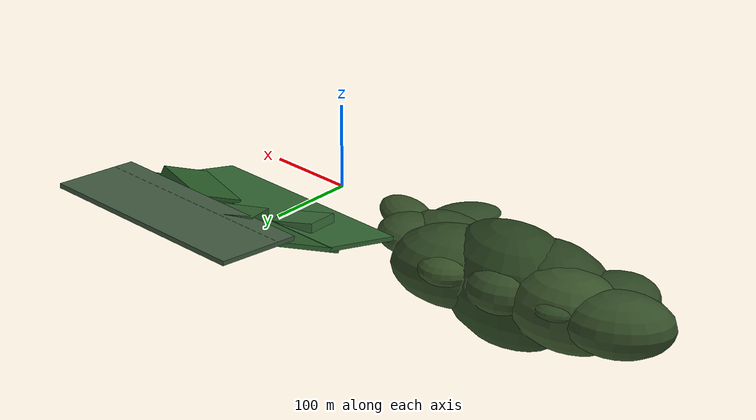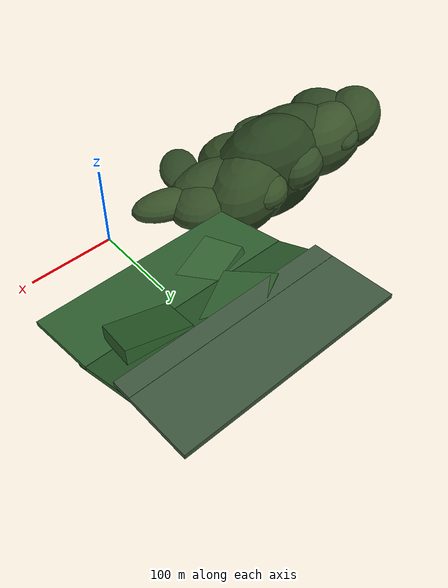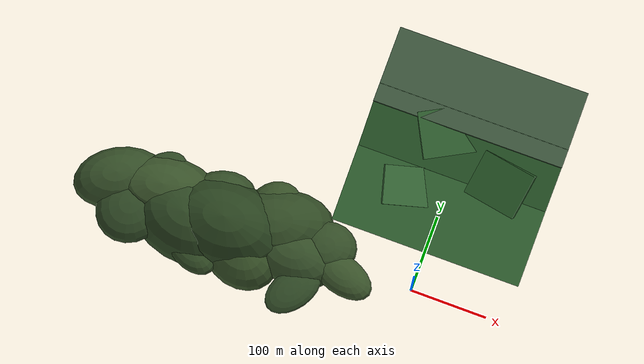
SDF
<sdf version="1.9">
 <world name="combined_drone_world">
  <model name="rugged_mountains">
   <static>true</static>
   <link name="terrain_link">
    <collision name="c1">
     <pose>-400 10 -15 0 0 0.5</pose>
     <geometry><ellipsoid><radii>60 40 35</radii></ellipsoid></geometry>
    </collision>
    <visual name="v1">
     <pose>-400 10 -15 0 0 0.5</pose>
     <geometry><ellipsoid><radii>60 40 35</radii></ellipsoid></geometry>
     <material><ambient>0.2 0.3 0.15 1</ambient><diffuse>0.2 0.3 0.15 1</diffuse></material>
    </visual>
    <collision name="c2">
     <pose>-370 -20 -10 0 0 -0.4</pose>
     <geometry><ellipsoid><radii>45 50 25</radii></ellipsoid></geometry>
    </collision>
    <visual name="v2">
     <pose>-370 -20 -10 0 0 -0.4</pose>
     <geometry><ellipsoid><radii>45 50 25</radii></ellipsoid></geometry>
     <material><ambient>0.18 0.28 0.14 1</ambient><diffuse>0.18 0.28 0.14 1</diffuse></material>
    </visual>
    <collision name="c3">
     <pose>-340 15 -20 0 0 0.2</pose>
     <geometry><ellipsoid><radii>70 45 45</radii></ellipsoid></geometry>
    </collision>
    <visual name="v3">
     <pose>-340 15 -20 0 0 0.2</pose>
     <geometry><ellipsoid><radii>70 45 45</radii></ellipsoid></geometry>
     <material><ambient>0.22 0.32 0.16 1</ambient><diffuse>0.22 0.32 0.16 1</diffuse></material>
    </visual>
    <collision name="c4">
     <pose>-300 -10 -25 0 0 -0.2</pose>
     <geometry><ellipsoid><radii>80 55 55</radii></ellipsoid></geometry>
    </collision>
    <visual name="v4">
     <pose>-300 -10 -25 0 0 -0.2</pose>
     <geometry><ellipsoid><radii>80 55 55</radii></ellipsoid></geometry>
     <material><ambient>0.17 0.27 0.13 1</ambient><diffuse>0.17 0.27 0.13 1</diffuse></material>
    </visual>
    <collision name="c5">
     <pose>-270 25 -15 0 0 0.6</pose>
     <geometry><ellipsoid><radii>50 40 30</radii></ellipsoid></geometry>
    </collision>
    <visual name="v5">
     <pose>-270 25 -15 0 0 0.6</pose>
     <geometry><ellipsoid><radii>50 40 30</radii></ellipsoid></geometry>
     <material><ambient>0.2 0.3 0.15 1</ambient><diffuse>0.2 0.3 0.15 1</diffuse></material>
    </visual>
    <collision name="c6">
     <pose>-250 0 -30 0 0 0</pose>
     <geometry><ellipsoid><radii>90 60 70</radii></ellipsoid></geometry>
    </collision>
    <visual name="v6">
     <pose>-250 0 -30 0 0 0</pose>
     <geometry><ellipsoid><radii>90 60 70</radii></ellipsoid></geometry>
     <material><ambient>0.16 0.26 0.12 1</ambient><diffuse>0.16 0.26 0.12 1</diffuse></material>
    </visual>
    <collision name="c7">
     <pose>-220 -25 -18 0 0 -0.5</pose>
     <geometry><ellipsoid><radii>55 45 35</radii></ellipsoid></geometry>
    </collision>
    <visual name="v7">
     <pose>-220 -25 -18 0 0 -0.5</pose>
     <geometry><ellipsoid><radii>55 45 35</radii></ellipsoid></geometry>
     <material><ambient>0.21 0.31 0.15 1</ambient><diffuse>0.21 0.31 0.15 1</diffuse></material>
    </visual>
    <collision name="c8">
     <pose>-190 20 -22 0 0 0.4</pose>
     <geometry><ellipsoid><radii>75 50 45</radii></ellipsoid></geometry>
    </collision>
    <visual name="v8">
     <pose>-190 20 -22 0 0 0.4</pose>
     <geometry><ellipsoid><radii>75 50 45</radii></ellipsoid></geometry>
     <material><ambient>0.19 0.29 0.14 1</ambient><diffuse>0.19 0.29 0.14 1</diffuse></material>
    </visual>
    <collision name="c9">
     <pose>-160 -5 -15 0 0 -0.1</pose>
     <geometry><ellipsoid><radii>65 40 30</radii></ellipsoid></geometry>
    </collision>
    <visual name="v9">
     <pose>-160 -5 -15 0 0 -0.1</pose>
     <geometry><ellipsoid><radii>65 40 30</radii></ellipsoid></geometry>
     <material><ambient>0.2 0.3 0.15 1</ambient><diffuse>0.2 0.3 0.15 1</diffuse></material>
    </visual>
    <collision name="c10">
     <pose>-120 15 -10 0 0 0.3</pose>
     <geometry><ellipsoid><radii>40 35 20</radii></ellipsoid></geometry>
    </collision>
    <visual name="v10">
     <pose>-120 15 -10 0 0 0.3</pose>
     <geometry><ellipsoid><radii>40 35 20</radii></ellipsoid></geometry>
     <material><ambient>0.2 0.3 0.15 1</ambient><diffuse>0.2 0.3 0.15 1</diffuse></material>
    </visual>
    <collision name="c11">
     <pose>-90 -10 -8 0 0 -0.3</pose>
     <geometry><ellipsoid><radii>45 25 15</radii></ellipsoid></geometry>
    </collision>
    <visual name="v11">
     <pose>-90 -10 -8 0 0 -0.3</pose>
     <geometry><ellipsoid><radii>45 25 15</radii></ellipsoid></geometry>
     <material><ambient>0.22 0.32 0.16 1</ambient><diffuse>0.22 0.32 0.16 1</diffuse></material>
    </visual>
    <collision name="f1">
     <pose>-350 40 -5 0 0 0.7</pose>
     <geometry><ellipsoid><radii>30 20 10</radii></ellipsoid></geometry>
    </collision>
    <visual name="vf1">
     <pose>-350 40 -5 0 0 0.7</pose>
     <geometry><ellipsoid><radii>30 20 10</radii></ellipsoid></geometry>
     <material><ambient>0.18 0.28 0.14 1</ambient><diffuse>0.18 0.28 0.14 1</diffuse></material>
    </visual>
    <collision name="f2">
     <pose>-280 -45 -8 0 0 -0.5</pose>
     <geometry><ellipsoid><radii>40 25 15</radii></ellipsoid></geometry>
    </collision>
    <visual name="vf2">
     <pose>-280 -45 -8 0 0 -0.5</pose>
     <geometry><ellipsoid><radii>40 25 15</radii></ellipsoid></geometry>
     <material><ambient>0.19 0.29 0.14 1</ambient><diffuse>0.19 0.29 0.14 1</diffuse></material>
    </visual>
    <collision name="f3">
     <pose>-200 45 -10 0 0 0.8</pose>
     <geometry><ellipsoid><radii>35 30 18</radii></ellipsoid></geometry>
    </collision>
    <visual name="vf3">
     <pose>-200 45 -10 0 0 0.8</pose>
     <geometry><ellipsoid><radii>35 30 18</radii></ellipsoid></geometry>
     <material><ambient>0.21 0.31 0.15 1</ambient><diffuse>0.21 0.31 0.15 1</diffuse></material>
    </visual>
    <collision name="f4">
     <pose>-140 -35 -5 0 0 -0.6</pose>
     <geometry><ellipsoid><radii>25 20 10</radii></ellipsoid></geometry>
    </collision>
    <visual name="vf4">
     <pose>-140 -50 -5 0 0 -0.6</pose>
     <geometry><ellipsoid><radii>25 40 10</radii></ellipsoid></geometry>
     <material><ambient>0.18 0.28 0.14 1</ambient><diffuse>0.18 0.28 0.14 1</diffuse></material>
    </visual>
   </link>
  </model>
  <model name="northern_mountain">
   <static>true</static>
   <link name="slope_1">
    <pose>0 100 12 0.25 0 0</pose>
    <collision name="col"><geometry><box><size>250 100 5</size></box></geometry></collision>
    <visual name="vis">
     <geometry><box><size>250 100 5</size></box></geometry>
     <material><ambient>0.2 0.4 0.2 1</ambient><diffuse>0.2 0.4 0.2 1</diffuse></material>
    </visual>
   </link>
   <link name="slope_2">
    <pose>0 180 39 0.45 0 0</pose>
    <collision name="col"><geometry><box><size>250 100 5</size></box></geometry></collision>
    <visual name="vis">
     <geometry><box><size>250 100 5</size></box></geometry>
     <material><ambient>0.18 0.38 0.18 1</ambient><diffuse>0.18 0.38 0.18 1</diffuse></material>
    </visual>
   </link>
   <link name="slope_3">
    <pose>0 250 63 0.1 0 0</pose>
    <collision name="col"><geometry><box><size>250 100 5</size></box></geometry></collision>
    <visual name="vis">
     <geometry><box><size>250 100 5</size></box></geometry>
     <material><ambient>0.25 0.35 0.25 1</ambient><diffuse>0.25 0.35 0.25 1</diffuse></material>
    </visual>
   </link>
   <link name="hill_1">
    <pose>-50 120 20 0.2 0.15 0.3</pose>
    <collision name="col"><geometry><box><size>60 50 10</size></box></geometry></collision>
    <visual name="vis">
     <geometry><box><size>60 50 10</size></box></geometry>
     <material><ambient>0.22 0.42 0.22 1</ambient><diffuse>0.22 0.42 0.22 1</diffuse></material>
    </visual>
   </link>
   <link name="hill_2">
    <pose>60 160 35 0.4 -0.1 -0.2</pose>
    <collision name="col"><geometry><box><size>70 60 15</size></box></geometry></collision>
    <visual name="vis">
     <geometry><box><size>70 60 15</size></box></geometry>
     <material><ambient>0.16 0.36 0.16 1</ambient><diffuse>0.16 0.36 0.16 1</diffuse></material>
    </visual>
   </link>
   <link name="hill_3">
    <pose>-20 200 48 0.3 0 0.5</pose>
    <collision name="col"><geometry><box><size>80 60 12</size></box></geometry></collision>
    <visual name="vis">
     <geometry><box><size>80 60 12</size></box></geometry>
     <material><ambient>0.2 0.4 0.2 1</ambient><diffuse>0.2 0.4 0.2 1</diffuse></material>
    </visual>
   </link>
  </model>
 </world>
</sdf>
